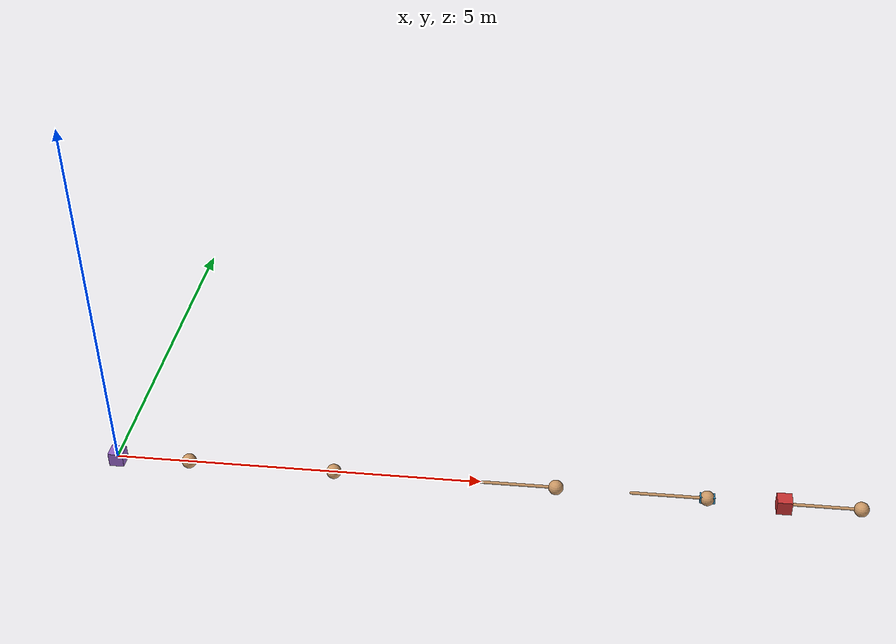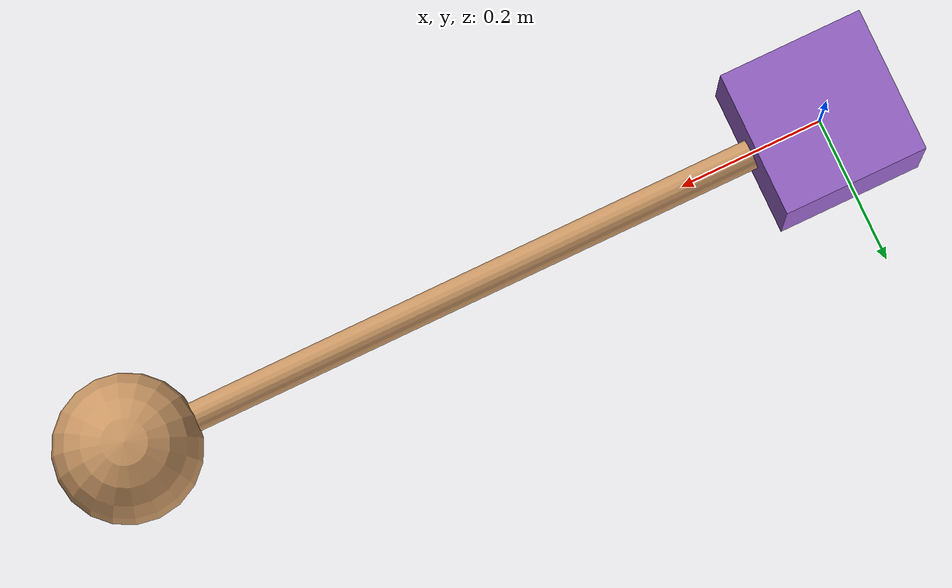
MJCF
<mujoco>
  <visual>
    <global elevation="-20"/>
    <headlight ambient=".3 .3 .3" diffuse=".9 .9 .9"/>
  </visual>

  <default>
    <geom rgba="0.8 0.6 .4 1"/>
  </default>

  <worldbody>
    <!-- Left pendulum -->
    <body name="link1">
      <joint name="link1" axis="0 -1 0"/>
      <geom type="capsule" size=".02" fromto="0 0 0 1 0 0" mass="0"/>
      <geom type="sphere" size=".1" mass="1" pos="1 0 0"/>
    </body>

    <body name="motor1">
      <joint name="motor1" axis="0 -1 0"/>
      <geom type="box" size=".1 .1 .1" mass="30" contype="0" conaffinity="0" rgba=".6 .4 .8 1"/>
    </body>

    <!-- 1. Original link2 (armature, actuated) -->
    <body name="link2_1" pos="2 0 0">
      <joint name="link2_1" armature="1.8" axis="0 -1 0"/>
      <geom type="capsule" size=".02" fromto="0 0 0 1 0 0" mass="0"/>
      <geom type="sphere" size=".1" mass="1" pos="1 0 0"/>
    </body>

    <!-- 2. Free-swinging link2 -->
    <body name="link2_2" pos="5 0 0">
      <joint name="link2_2" armature="1.8" axis="0 -1 0" />
      <geom type="capsule" size=".02" fromto="0 0 0 1 0 0" mass="0"/>
      <geom type="sphere" size=".1" mass="1" pos="1 0 0"/>
    </body>

    <!-- 3. Free with attached body at tip -->
    <body name="link2_3" pos="7 0 0">
      <joint name="link2_3" armature="1.8" axis="0 -1 0" />
      <geom type="capsule" size=".02" fromto="0 0 0 1 0 0" mass="0"/>
      <geom type="sphere" size=".1" mass="1" pos="1 0 0"/>
      <body name="attached_body" pos="1 0 0">
        <geom type="box" size=".1 .05 .05" mass="0.5" rgba=".2 .6 .8 1"/>
      </body>
    </body>

    <!-- 4. Reinforced joint -->
    <body name="link2_4" pos="9 0 0">
      <joint name="link2_4" armature="2.5" axis="0 -1 0" />
      <geom type="capsule" size=".02" fromto="0 0 0 1 0 0" mass="0"/>
      <geom type="sphere" size=".1" mass="1" pos="1 0 0"/>
      <body name="joint_reinforcement" pos="0 0 0">
        <geom type="box" size=".1 .1 .1" mass="1" rgba=".8 .2 .2 1"/>
      </body>
    </body>

  </worldbody>

  <equality>
    <joint joint1="motor1" joint2="link1" polycoef="0 3"/>
  </equality>

  <actuator>
    <!-- Only left pendulum actuated -->
    <position name="link1" joint="motor1" kp=".3" ctrlrange="-5 5"/>
    <position name="link2_1" joint="link2_1" kp=".3" ctrlrange="-5 5" gear="3"/>
  </actuator>

  <keyframe>
    <key name="initial_pose" qpos="0 0 0.4"/>
  </keyframe>
</mujoco>
